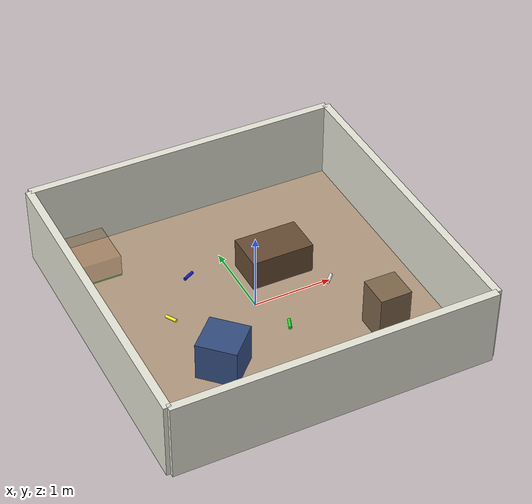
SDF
<?xml version="1.0" ?>
<sdf version="1.8">
  <world name="jetank_sock_collection">

    <!-- Physics -->
    <physics name="1ms" type="ignored">
      <max_step_size>0.001</max_step_size>
      <real_time_factor>1.0</real_time_factor>
    </physics>

    <!-- Plugins -->
    <plugin filename="libignition-gazebo-physics-system.so" name="ignition::gazebo::systems::Physics"/>
    <plugin filename="libignition-gazebo-user-commands-system.so" name="ignition::gazebo::systems::UserCommands"/>
    <plugin filename="libignition-gazebo-scene-broadcaster-system.so" name="ignition::gazebo::systems::SceneBroadcaster"/>
    <plugin filename="libignition-gazebo-contact-system.so" name="ignition::gazebo::systems::Contact"/>
    <!-- Rendering sensors (camera, gpu_lidar) require the Sensors system + a render engine. -->
    <plugin filename="libignition-gazebo-sensors-system.so" name="ignition::gazebo::systems::Sensors">
      <render_engine>ogre2</render_engine>
    </plugin>
    <!-- IMU sensors require the Imu system. -->
    <plugin filename="libignition-gazebo-imu-system.so" name="ignition::gazebo::systems::Imu"/>

    <!-- Scene -->
    <scene>
      <ambient>0.5 0.5 0.5 1</ambient>
      <background>0.7 0.7 0.7 1</background>
      <shadows>true</shadows>
      <grid>false</grid>
    </scene>

    <!-- GUI -->
    <gui fullscreen="0">
      <!-- Fortress render stack (GzScene3D is deprecated → blank GUI). -->
      <plugin filename="MinimalScene" name="3D View">
        <ignition-gui>
          <title>3D View</title>
          <property type="bool" key="showTitleBar">false</property>
          <property type="string" key="state">docked</property>
        </ignition-gui>
        <engine>ogre2</engine>
        <scene>scene</scene>
        <ambient_light>0.5 0.5 0.5</ambient_light>
        <background_color>0.8 0.8 0.8</background_color>
        <camera_pose>0 -5 3 0 0.4 1.5708</camera_pose>
      </plugin>
      <plugin filename="GzSceneManager" name="Scene Manager"/>
      <plugin filename="InteractiveViewControl" name="Interactive view control"/>
      <plugin filename="CameraTracking" name="Camera Tracking"/>

      <plugin filename="WorldControl" name="World control">
        <ignition-gui>
          <title>World control</title>
          <property type="bool" key="showTitleBar">false</property>
          <property type="bool" key="resizable">false</property>
          <property type="double" key="height">72</property>
          <property type="double" key="width">121</property>
          <property type="double" key="z">1</property>
          <property type="string" key="state">floating</property>
          <anchors target="3D View">
            <line own="left" target="left"/>
            <line own="bottom" target="bottom"/>
          </anchors>
        </ignition-gui>
        <play_pause>true</play_pause>
        <step>true</step>
        <start_paused>true</start_paused>
      </plugin>

      <plugin filename="WorldStats" name="World stats">
        <ignition-gui>
          <title>World stats</title>
          <property type="bool" key="showTitleBar">false</property>
          <property type="bool" key="resizable">false</property>
          <property type="double" key="height">110</property>
          <property type="double" key="width">290</property>
          <property type="double" key="z">1</property>
          <property type="string" key="state">floating</property>
          <anchors target="3D View">
            <line own="right" target="right"/>
            <line own="bottom" target="bottom"/>
          </anchors>
        </ignition-gui>
        <sim_time>true</sim_time>
        <real_time>true</real_time>
        <real_time_factor>true</real_time_factor>
        <iterations>true</iterations>
      </plugin>
    </gui>

    <!-- Lighting (warm indoor lighting) -->
    <light type="directional" name="ceiling_light">
      <cast_shadows>true</cast_shadows>
      <pose>0 0 3 0 0 0</pose>
      <diffuse>0.9 0.9 0.8 1</diffuse>
      <specular>0.3 0.3 0.3 1</specular>
      <attenuation>
        <range>1000</range>
        <constant>0.9</constant>
        <linear>0.01</linear>
        <quadratic>0.001</quadratic>
      </attenuation>
      <direction>0 0 -1</direction>
    </light>

    <!-- Floor (carpet-like texture) -->
    <model name="floor">
      <static>true</static>
      <link name="link">
        <collision name="collision">
          <geometry>
            <plane>
              <normal>0 0 1</normal>
              <size>4 4</size>
            </plane>
          </geometry>
        </collision>
        <visual name="visual">
          <geometry>
            <plane>
              <normal>0 0 1</normal>
              <size>4 4</size>
            </plane>
          </geometry>
          <material>
            <ambient>0.7 0.6 0.5 1</ambient>
            <diffuse>0.7 0.6 0.5 1</diffuse>
            <specular>0.1 0.1 0.1 1</specular>
          </material>
        </visual>
      </link>
    </model>

    <!-- Room walls -->
    <model name="wall_north">
      <static>true</static>
      <pose>0 2.0 0.5 0 0 0</pose>
      <link name="link">
        <collision name="collision">
          <geometry>
            <box>
              <size>4 0.1 1.0</size>
            </box>
          </geometry>
        </collision>
        <visual name="visual">
          <geometry>
            <box>
              <size>4 0.1 1.0</size>
            </box>
          </geometry>
          <material>
            <ambient>0.9 0.9 0.85 1</ambient>
            <diffuse>0.9 0.9 0.85 1</diffuse>
          </material>
        </visual>
      </link>
    </model>

    <model name="wall_south">
      <static>true</static>
      <pose>0 -2.0 0.5 0 0 0</pose>
      <link name="link">
        <collision name="collision">
          <geometry>
            <box>
              <size>4 0.1 1.0</size>
            </box>
          </geometry>
        </collision>
        <visual name="visual">
          <geometry>
            <box>
              <size>4 0.1 1.0</size>
            </box>
          </geometry>
          <material>
            <ambient>0.9 0.9 0.85 1</ambient>
            <diffuse>0.9 0.9 0.85 1</diffuse>
          </material>
        </visual>
      </link>
    </model>

    <model name="wall_east">
      <static>true</static>
      <pose>2.0 0 0.5 0 0 0</pose>
      <link name="link">
        <collision name="collision">
          <geometry>
            <box>
              <size>0.1 4 1.0</size>
            </box>
          </geometry>
        </collision>
        <visual name="visual">
          <geometry>
            <box>
              <size>0.1 4 1.0</size>
            </box>
          </geometry>
          <material>
            <ambient>0.9 0.9 0.85 1</ambient>
            <diffuse>0.9 0.9 0.85 1</diffuse>
          </material>
        </visual>
      </link>
    </model>

    <model name="wall_west">
      <static>true</static>
      <pose>-2.0 0 0.5 0 0 0</pose>
      <link name="link">
        <collision name="collision">
          <geometry>
            <box>
              <size>0.1 4 1.0</size>
            </box>
          </geometry>
        </collision>
        <visual name="visual">
          <geometry>
            <box>
              <size>0.1 4 1.0</size>
            </box>
          </geometry>
          <material>
            <ambient>0.9 0.9 0.85 1</ambient>
            <diffuse>0.9 0.9 0.85 1</diffuse>
          </material>
        </visual>
      </link>
    </model>

    <!-- Furniture obstacles -->
    <!-- Coffee table -->
    <model name="coffee_table">
      <static>true</static>
      <pose>0.5 0.5 0.2 0 0 0</pose>
      <link name="link">
        <collision name="collision">
          <geometry>
            <box>
              <size>0.8 0.5 0.4</size>
            </box>
          </geometry>
        </collision>
        <visual name="visual">
          <geometry>
            <box>
              <size>0.8 0.5 0.4</size>
            </box>
          </geometry>
          <material>
            <ambient>0.4 0.3 0.2 1</ambient>
            <diffuse>0.4 0.3 0.2 1</diffuse>
          </material>
        </visual>
      </link>
    </model>

    <!-- Chair/ottoman -->
    <model name="ottoman">
      <static>true</static>
      <pose>-0.8 -0.8 0.25 0 0 0.785</pose>
      <link name="link">
        <collision name="collision">
          <geometry>
            <box>
              <size>0.5 0.5 0.5</size>
            </box>
          </geometry>
        </collision>
        <visual name="visual">
          <geometry>
            <box>
              <size>0.5 0.5 0.5</size>
            </box>
          </geometry>
          <material>
            <ambient>0.2 0.3 0.5 1</ambient>
            <diffuse>0.2 0.3 0.5 1</diffuse>
          </material>
        </visual>
      </link>
    </model>

    <!-- Side table -->
    <model name="side_table">
      <static>true</static>
      <pose>1.2 -1.0 0.3 0 0 0</pose>
      <link name="link">
        <collision name="collision">
          <geometry>
            <box>
              <size>0.4 0.4 0.6</size>
            </box>
          </geometry>
        </collision>
        <visual name="visual">
          <geometry>
            <box>
              <size>0.4 0.4 0.6</size>
            </box>
          </geometry>
          <material>
            <ambient>0.5 0.4 0.3 1</ambient>
            <diffuse>0.5 0.4 0.3 1</diffuse>
          </material>
        </visual>
      </link>
    </model>

    <!-- Socks (simple cylindrical models with varied colors) -->
    <!-- Red sock -->
    <model name="sock_red">
      <pose>0.8 1.0 0.025 0 1.5708 0</pose>
      <link name="link">
        <inertial>
          <mass>0.05</mass>
          <inertia>
            <ixx>0.0001</ixx>
            <iyy>0.0001</iyy>
            <izz>0.00001</izz>
          </inertia>
        </inertial>
        <collision name="collision">
          <geometry>
            <cylinder>
              <radius>0.02</radius>
              <length>0.15</length>
            </cylinder>
          </geometry>
        </collision>
        <visual name="visual">
          <geometry>
            <cylinder>
              <radius>0.02</radius>
              <length>0.15</length>
            </cylinder>
          </geometry>
          <material>
            <ambient>0.9 0.1 0.1 1</ambient>
            <diffuse>0.9 0.1 0.1 1</diffuse>
          </material>
        </visual>
      </link>
    </model>

    <!-- Blue sock -->
    <model name="sock_blue">
      <pose>-0.5 0.8 0.025 0 1.5708 0.5</pose>
      <link name="link">
        <inertial>
          <mass>0.05</mass>
          <inertia>
            <ixx>0.0001</ixx>
            <iyy>0.0001</iyy>
            <izz>0.00001</izz>
          </inertia>
        </inertial>
        <collision name="collision">
          <geometry>
            <cylinder>
              <radius>0.02</radius>
              <length>0.15</length>
            </cylinder>
          </geometry>
        </collision>
        <visual name="visual">
          <geometry>
            <cylinder>
              <radius>0.02</radius>
              <length>0.15</length>
            </cylinder>
          </geometry>
          <material>
            <ambient>0.1 0.1 0.9 1</ambient>
            <diffuse>0.1 0.1 0.9 1</diffuse>
          </material>
        </visual>
      </link>
    </model>

    <!-- Green sock -->
    <model name="sock_green">
      <pose>0.2 -0.5 0.025 0 1.5708 1.2</pose>
      <link name="link">
        <inertial>
          <mass>0.05</mass>
          <inertia>
            <ixx>0.0001</ixx>
            <iyy>0.0001</iyy>
            <izz>0.00001</izz>
          </inertia>
        </inertial>
        <collision name="collision">
          <geometry>
            <cylinder>
              <radius>0.02</radius>
              <length>0.15</length>
            </cylinder>
          </geometry>
        </collision>
        <visual name="visual">
          <geometry>
            <cylinder>
              <radius>0.02</radius>
              <length>0.15</length>
            </cylinder>
          </geometry>
          <material>
            <ambient>0.1 0.9 0.1 1</ambient>
            <diffuse>0.1 0.9 0.1 1</diffuse>
          </material>
        </visual>
      </link>
    </model>

    <!-- Yellow sock -->
    <model name="sock_yellow">
      <pose>-1.0 0.2 0.025 0 1.5708 2.1</pose>
      <link name="link">
        <inertial>
          <mass>0.05</mass>
          <inertia>
            <ixx>0.0001</ixx>
            <iyy>0.0001</iyy>
            <izz>0.00001</izz>
          </inertia>
        </inertial>
        <collision name="collision">
          <geometry>
            <cylinder>
              <radius>0.02</radius>
              <length>0.15</length>
            </cylinder>
          </geometry>
        </collision>
        <visual name="visual">
          <geometry>
            <cylinder>
              <radius>0.02</radius>
              <length>0.15</length>
            </cylinder>
          </geometry>
          <material>
            <ambient>0.9 0.9 0.1 1</ambient>
            <diffuse>0.9 0.9 0.1 1</diffuse>
          </material>
        </visual>
      </link>
    </model>

    <!-- White sock -->
    <model name="sock_white">
      <pose>1.0 0.0 0.025 0 1.5708 0.8</pose>
      <link name="link">
        <inertial>
          <mass>0.05</mass>
          <inertia>
            <ixx>0.0001</ixx>
            <iyy>0.0001</iyy>
            <izz>0.00001</izz>
          </inertia>
        </inertial>
        <collision name="collision">
          <geometry>
            <cylinder>
              <radius>0.02</radius>
              <length>0.15</length>
            </cylinder>
          </geometry>
        </collision>
        <visual name="visual">
          <geometry>
            <cylinder>
              <radius>0.02</radius>
              <length>0.15</length>
            </cylinder>
          </geometry>
          <material>
            <ambient>0.95 0.95 0.95 1</ambient>
            <diffuse>0.95 0.95 0.95 1</diffuse>
          </material>
        </visual>
      </link>
    </model>

    <!-- Pink sock -->
    <model name="sock_pink">
      <pose>-0.3 -1.2 0.025 0 1.5708 1.8</pose>
      <link name="link">
        <inertial>
          <mass>0.05</mass>
          <inertia>
            <ixx>0.0001</ixx>
            <iyy>0.0001</iyy>
            <izz>0.00001</izz>
          </inertia>
        </inertial>
        <collision name="collision">
          <geometry>
            <cylinder>
              <radius>0.02</radius>
              <length>0.15</length>
            </cylinder>
          </geometry>
        </collision>
        <visual name="visual">
          <geometry>
            <cylinder>
              <radius>0.02</radius>
              <length>0.15</length>
            </cylinder>
          </geometry>
          <material>
            <ambient>0.9 0.4 0.7 1</ambient>
            <diffuse>0.9 0.4 0.7 1</diffuse>
          </material>
        </visual>
      </link>
    </model>

    <!-- Collection zone (basket area) -->
    <model name="collection_zone">
      <static>true</static>
      <pose>-1.5 1.5 0.01 0 0 0</pose>
      <link name="link">
        <visual name="visual">
          <geometry>
            <box>
              <size>0.6 0.6 0.02</size>
            </box>
          </geometry>
          <material>
            <ambient>0 1 0 0.5</ambient>
            <diffuse>0 1 0 0.5</diffuse>
          </material>
        </visual>
      </link>
    </model>

    <!-- Collection basket frame -->
    <model name="basket">
      <static>true</static>
      <pose>-1.5 1.5 0.15 0 0 0</pose>
      <link name="link">
        <visual name="visual">
          <geometry>
            <box>
              <size>0.6 0.6 0.3</size>
            </box>
          </geometry>
          <material>
            <ambient>0.6 0.4 0.2 0.3</ambient>
            <diffuse>0.6 0.4 0.2 0.3</diffuse>
          </material>
        </visual>
      </link>
    </model>

  </world>
</sdf>
